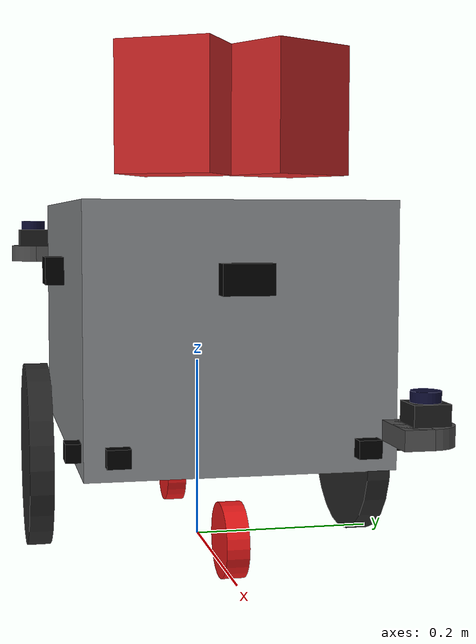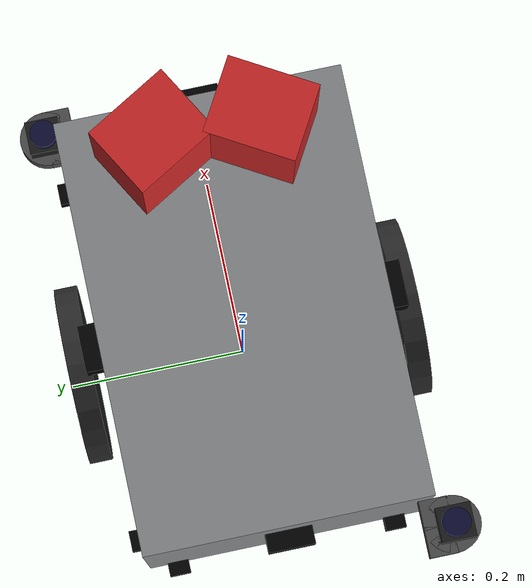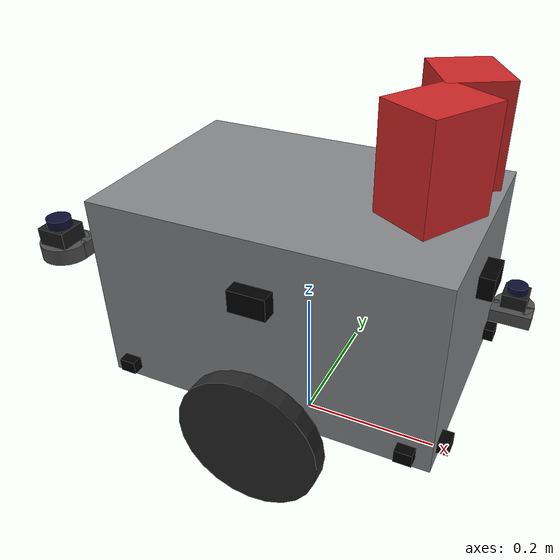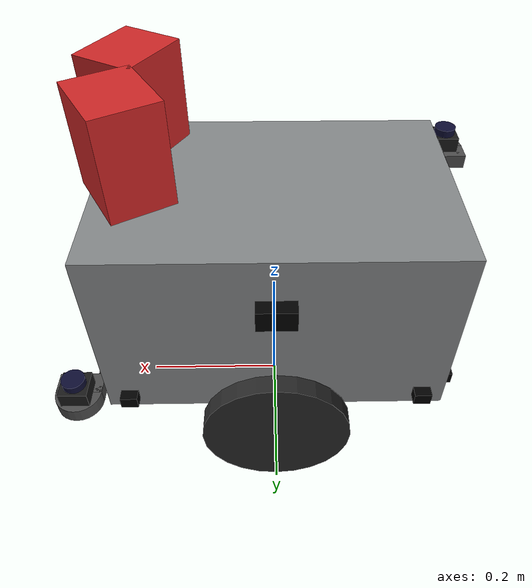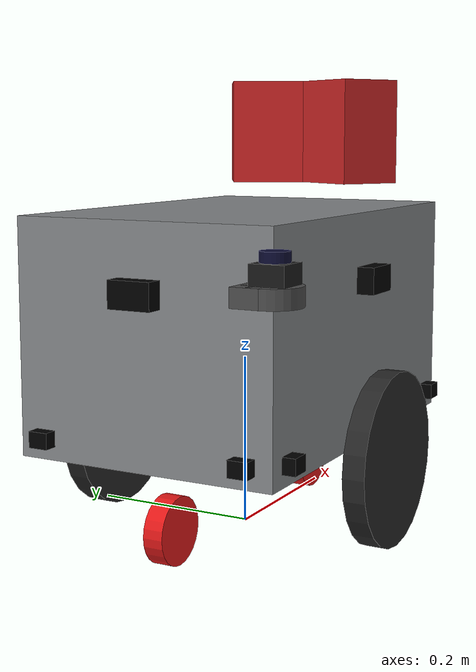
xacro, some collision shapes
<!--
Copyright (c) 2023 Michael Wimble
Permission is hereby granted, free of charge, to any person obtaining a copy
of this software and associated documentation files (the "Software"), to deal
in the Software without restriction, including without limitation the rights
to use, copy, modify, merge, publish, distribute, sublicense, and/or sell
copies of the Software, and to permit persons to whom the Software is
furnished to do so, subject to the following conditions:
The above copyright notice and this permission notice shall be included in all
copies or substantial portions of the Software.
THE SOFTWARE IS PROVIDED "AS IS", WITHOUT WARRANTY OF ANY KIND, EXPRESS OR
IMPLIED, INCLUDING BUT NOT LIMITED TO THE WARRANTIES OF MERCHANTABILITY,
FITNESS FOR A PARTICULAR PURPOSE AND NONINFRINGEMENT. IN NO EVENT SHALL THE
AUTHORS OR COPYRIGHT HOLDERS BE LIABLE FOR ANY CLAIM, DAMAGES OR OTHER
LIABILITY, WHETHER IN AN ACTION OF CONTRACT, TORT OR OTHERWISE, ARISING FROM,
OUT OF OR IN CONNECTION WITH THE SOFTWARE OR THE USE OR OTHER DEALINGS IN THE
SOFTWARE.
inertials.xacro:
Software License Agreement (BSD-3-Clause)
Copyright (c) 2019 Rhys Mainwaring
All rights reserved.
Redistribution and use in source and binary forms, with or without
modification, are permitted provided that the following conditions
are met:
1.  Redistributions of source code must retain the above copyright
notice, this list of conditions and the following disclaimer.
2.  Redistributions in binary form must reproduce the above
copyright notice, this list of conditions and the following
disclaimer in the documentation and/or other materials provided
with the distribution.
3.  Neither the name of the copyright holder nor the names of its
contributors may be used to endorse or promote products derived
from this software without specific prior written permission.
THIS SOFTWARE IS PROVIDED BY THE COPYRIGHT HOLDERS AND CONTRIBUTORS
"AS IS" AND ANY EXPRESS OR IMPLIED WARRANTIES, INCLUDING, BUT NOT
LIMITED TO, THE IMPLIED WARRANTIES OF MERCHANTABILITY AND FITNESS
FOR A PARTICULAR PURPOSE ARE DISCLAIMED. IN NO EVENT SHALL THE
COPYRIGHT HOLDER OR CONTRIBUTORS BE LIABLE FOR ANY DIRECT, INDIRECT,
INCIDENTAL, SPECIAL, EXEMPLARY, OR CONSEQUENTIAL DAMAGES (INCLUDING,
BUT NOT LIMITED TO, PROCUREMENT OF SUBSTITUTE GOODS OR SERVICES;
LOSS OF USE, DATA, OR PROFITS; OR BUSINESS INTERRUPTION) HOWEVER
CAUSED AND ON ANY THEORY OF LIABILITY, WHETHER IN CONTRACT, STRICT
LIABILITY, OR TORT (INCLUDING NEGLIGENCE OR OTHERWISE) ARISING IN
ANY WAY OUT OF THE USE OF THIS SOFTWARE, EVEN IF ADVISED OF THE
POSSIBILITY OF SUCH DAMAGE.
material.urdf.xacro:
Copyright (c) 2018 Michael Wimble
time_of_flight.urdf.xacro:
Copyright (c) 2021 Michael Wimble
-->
<?xml version="1.0"?>
<robot xmlns:xacro="http://ros.org/wiki/xacro" name="ravel">
    <xacro:include filename="$(find raven_description)/urdf/inertials.xacro" />
    <xacro:include filename="$(find raven_description)/urdf/raven_properties.urdf.xacro" />
    <xacro:include filename="$(find raven_description)/urdf/caster.urdf.xacro" />
    <xacro:include filename="$(find raven_description)/urdf/ld06.urdf.xacro" />
    <xacro:include filename="$(find raven_description)/urdf/material.urdf.xacro" />
    <xacro:include filename="$(find raven_description)/urdf/raven_gazebo.urdf.xacro" />
    <xacro:include filename="$(find raven_description)/urdf/wheel.urdf.xacro" />
    <xacro:include filename="$(find raven_description)/urdf/oakd.urdf.xacro" />

    <link name="base_link">
        <collision>
            <geometry>
                <box size="${body_length} ${body_width} ${body_height}" />
            </geometry>
            <origin rpy="0 0 0" xyz="0 0 ${(body_height/2)}" />
        </collision>
        <visual>
            <geometry>
                <box size="${body_length} ${body_width} ${body_height}" />
            </geometry>
            <material name="aluminum_frame" />
            <origin rpy="0 0 0" xyz="${(-body_length/2)+wheel_offset_from_front} 0 ${(body_height/2)}" />
        </visual>
        <inertial>
            <origin xyz="0 0 0.05" rpy="0 0 0" />
            <mass value="12" />
            <inertia ixx="${(1/12) * mass * ((body_width  * body_width)  + (body_height * body_height))}" ixy="0.0" ixz="0.0" iyy="${(1/12) * mass * ((body_length * body_length) + (body_height * body_height))}" iyz="0.0" izz="${(1/12) * mass * ((body_length * body_length) + (body_width  * body_width))}" />
        </inertial>
    </link>
    <gazebo reference="base_link">
        <material>
            aluminum_frame
        </material>
    </gazebo>

    <link name="base_footprint" />

    <joint name="base_footprint_joint" type="fixed">
        <origin xyz="0 0 ${base_to_floor_z_offset}" rpy="0 0 0" />
        <parent link="base_footprint" />
        <child link="base_link" />
    </joint>

    <xacro:wheel wheel_prefix="front_left">
        <origin xyz="0 ${(body_width/2)+wheel_center_offset} -${gear_box_center_height}" rpy="0 0 0" />
    </xacro:wheel>

    <xacro:wheel wheel_prefix="front_right">
        <origin xyz="0 -${(body_width/2)+wheel_center_offset} -${gear_box_center_height}" rpy="0 0 0" />
    </xacro:wheel>

    <xacro:caster wheel_prefix="fcaster">
        <origin xyz="${fwheel_offset} 0.0 -${wheel_radius + gear_box_center_height - caster_radius}" rpy="0 0 0" />
    </xacro:caster>
    <xacro:caster wheel_prefix="rcaster">
        <origin xyz="${-fwheel_offset} 0.0 -${wheel_radius + gear_box_center_height - caster_radius}" rpy="0 0 0" />
    </xacro:caster>

    <xacro:ld06 lidar_prefix="right_rear">
        <origin xyz="${-(body_length / 2) - 0.030}  -${((body_width / 2) - 0)} 0.200" rpy="0 0 ${M_PI}" />
    </xacro:ld06>

    <xacro:ld06 lidar_prefix="left_front">
        <origin xyz="${(body_length / 2) + 0.030}  ${((body_width / 2) - 0.0)} 0.040" rpy="0 0 0" />
    </xacro:ld06>

    <xacro:include filename="$(find raven_description)/urdf/time_of_flight.urdf.xacro" />
    <xacro:include filename="$(find raven_description)/urdf/sonar.urdf.xacro" />

    <xacro:oakd_link mount_point="right" />
    <xacro:oakd_joint mount_point="right">
        <origin xyz="0.170 -0.055 0.350" rpy="0 0 -0.523599" />
    </xacro:oakd_joint>
    <xacro:oakd_link mount_point="left" />
    <xacro:oakd_joint mount_point="left">
        <origin xyz="0.170 0.055 0.350" rpy="0 0 0.523599" />
    </xacro:oakd_joint>
</robot>

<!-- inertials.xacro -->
<!--  xacro macros for intertials.
    Define xacro macros for math constants and inertials:

    - solid cuboid
    - solid cylinder
    - null (a placeholder inertial for logical link elements)
 -->
<robot name="tenacity_inertials" xmlns:xacro="http://ros.org/wiki/xacro">

    <!-- Math constants -->
    <xacro:property name="math_pi"        value="3.141592653589793" />
    <xacro:property name="math_pi_over_2" value="1.5707963267948966" />
    <xacro:property name="math_pi_over_4" value="0.785398163397448" />

    <!-- Inertial for solid cuboid with dimensions x y z  -->
    <xacro:macro name="solid_cuboid_inertial" params="rpy xyz mass x y z">
        <inertial>
            <origin rpy="${rpy}" xyz="${xyz}"/>
            <mass value="${mass}" />
            <inertia
                ixx="${mass * (y * y + z * z) / 12.0}" ixy="0.0" ixz="0.0"
                iyy="${mass * (x * x + z * z) / 12.0}" iyz="0.0"
                izz="${mass * (x * x + y * y) / 12.0}" />
        </inertial>
    </xacro:macro>

    <!-- Inertial for solid cylinder with radius and length aligned to z-axis  -->
    <xacro:macro name="solid_cylinder_inertial" params="rpy xyz mass radius length">
        <inertial>
            <origin rpy="${rpy}" xyz="${xyz}"/>
            <mass value="${mass}" />
            <inertia
                ixx="${mass * (3.0 * radius * radius + length * length) / 12.0}" ixy="0.0" ixz="0.0"
                iyy="${mass * (3.0 * radius * radius + length * length) / 12.0}" iyz="0.0"
                izz="${mass * (radius * radius) / 2.0}" />
        </inertial>
    </xacro:macro>

    <!-- A null inertial - used in placeholder links to esure the model will work in Gazebo -->
    <xacro:macro name="null_inertial">
        <inertial>
            <mass value="0.001"/>
            <inertia ixx="0.001" ixy="0" ixz="0" iyy="0.001" iyz="0" izz="0.001"/>
        </inertial>
    </xacro:macro>
</robot>

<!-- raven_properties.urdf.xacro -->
<robot xmlns:xacro="http://ros.org/wiki/xacro">
  <xacro:property name="M_PI" value="3.14159" />

  <xacro:property name="body_height" value="0.262" />
  <xacro:property name="body_length" value="0.4572" />
  <xacro:property name="body_width" value="0.3048" />
  <xacro:property name="mass" value="22" />

  <xacro:property name="caster_radius" value="0.0381" />
  <xacro:property name="caster_width" value="0.023" />
  <xacro:property name="fwheel_offset" value="0.170" />
  <xacro:property name="gear_box_center_height" value="0.015" />
  <xacro:property name="t265_height" value="0.016" />
  <xacro:property name="t265_length" value="0.100" />
  <xacro:property name="t265_width" value="0.008" />
  <xacro:property name="t265_x_offset" value="0.2126" />
  <xacro:property name="wheel_radius" value="0.10" />
  <xacro:property name="wheel_center_offset" value="0.030" />
  <xacro:property name="wheel_width" value="0.0254" />

  <xacro:property name="base_to_floor_z_offset" value="${wheel_radius+gear_box_center_height}" />
  <xacro:property name="t265_z_offset" value="${base_to_floor_z_offset+0.293}" />

  <xacro:property name="wheel_offset_from_front" value="${body_length/2}" />

  <material name="black">
    <color rgba="0 0 0 1" />
  </material>

  <material name="blackish">
    <color rgba="0.1 0.1 0.1 1" />
  </material>

</robot>

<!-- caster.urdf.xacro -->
<robot xmlns:xacro="http://ros.org/wiki/xacro" name="caster">

	<xacro:macro name="caster" params="wheel_prefix *joint_pose">
		<link name="${wheel_prefix}_wheel_link">
			<collision>
				<origin xyz="0 0 0" rpy="${M_PI/2} 0 0" />
				<geometry>
					<cylinder length="${caster_width}" radius="${caster_radius}" />
				</geometry>
			</collision>
			<inertial>
				<mass value="0.01" />
				<origin xyz="0 0 0" />
				<inertia ixx="0.02467" ixy="0" ixz="0" iyy="0.04411" iyz="0" izz="0.02467" />
			</inertial>
			<visual>
				<geometry>
					<cylinder length="${caster_width}" radius="${caster_radius}" />
				</geometry>
				<material name="caster_wheel_material" />
				<origin xyz="0 0 0" rpy="${M_PI/2} 0 0" />
			</visual>
		</link>

		<joint name="${wheel_prefix}_wheel" type="fixed">
			<parent link="base_link" />
			<child link="${wheel_prefix}_wheel_link" />
			<xacro:insert_block name="joint_pose" />
		</joint>

		<gazebo reference="${wheel_prefix}_wheel_link">
			<mu1>0.00001</mu1>
			<mu2>0.00001</mu2>
			<material>Gazebo/Red</material>
		</gazebo>

	</xacro:macro>
</robot>

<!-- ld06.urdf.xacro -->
<robot xmlns:xacro="http://ros.org/wiki/xacro" name="ld06">

  <xacro:macro name="ld06" params="lidar_prefix *joint_pose">
    <material name="ld06_${lidar_prefix}_grey">
      <color rgba="0.3 0.3 0.3 1" />
    </material>

    <material name="ld06_${lidar_prefix}_blackish">
      <color rgba="0.1 0.1 0.1 1" />
    </material>

    <material name="ld06_${lidar_prefix}_cylinder">
      <color rgba="0.05 0.05 0.2 1" />
    </material>
    <xacro:property name="ldlidar_z_offset" value="-0.003" />

    <xacro:property name="ld06_base_box_height" value="0.020" />
    <xacro:property name="ld06_base_box_width" value="0.060" />
    <xacro:property name="ld06_box_width" value="0.037" />
    <xacro:property name="ld06_box_height" value="0.022" />
    <xacro:property name="ld06_cylinder_height" value="0.013" />
    <xacro:property name="ld06_cylinder_radius" value="0.015" />

    <link name="ld06_box_${lidar_prefix}">
      <collision>
        <geometry>
          <box size="${ld06_box_width} ${ld06_box_width} ${ld06_box_height}" />
        </geometry>
        <origin rpy="0 0 0" xyz="0 0 0" />
      </collision>
      <visual>
        <geometry>
          <box size="${ld06_box_width} ${ld06_box_width} ${ld06_box_height}" />
        </geometry>
        <origin rpy="0 0 0" xyz="0 0 0" />
        <material name="ld06_${lidar_prefix}_blackish" />
      </visual>
    </link>
    <gazebo reference="ld06_box_${lidar_prefix}">
      <material>
        Gazebo/Black
      </material>
    </gazebo>
    <link name="ld06_cylinder_${lidar_prefix}">
      <collision>
        <geometry>
          <cylinder radius="${ld06_cylinder_radius}" length="${ld06_cylinder_height}" />
        </geometry>
      </collision>
      <visual>
        <geometry>
          <cylinder radius="${ld06_cylinder_radius}" length="${ld06_cylinder_height}" />
        </geometry>
        <origin xyz="0 0 0" rpy="0 0 0" />
        <material name="ld06_${lidar_prefix}_cylinder" />
      </visual>
    </link>
    <gazebo reference="ld06_cylinder_${lidar_prefix}">
      <material>
        Gazebo/BlueGlow
      </material>
    </gazebo>
    <link name="lidar_frame_${lidar_prefix}">
      <collision>
        <geometry>
          <box size="${ld06_base_box_width} ${ld06_base_box_width / 2} ${ld06_base_box_height}" />
        </geometry>
      </collision>
      <visual>
        <geometry>
          <box size="${ld06_base_box_width} ${ld06_base_box_width / 2} ${ld06_base_box_height}" />
        </geometry>
        <origin xyz="0 0 0" rpy="0 0 0" />
        <material name="ld06_${lidar_prefix}_grey" />
      </visual>
    </link>
    <gazebo reference="ld06_frame_${lidar_prefix}">
      <material>
        Gazebo/Grey
      </material>
    </gazebo>
    <link name="ld06_base_cylinder_${lidar_prefix}">
      <collision>
        <geometry>
          <cylinder radius="${ld06_base_box_width / 2}" length="${ld06_base_box_height}" />
        </geometry>
      </collision>
      <visual>
        <geometry>
          <cylinder radius="${ld06_base_box_width / 2}" length="${ld06_base_box_height}" />
        </geometry>
        <material name="ld06_${lidar_prefix}_grey" />
        <origin xyz="0 ${ld06_base_box_width / 4} 0" rpy="0 0 0" />
      </visual>
    </link>
    <gazebo reference="ld06_base_cylinder_${lidar_prefix}">
      <material>
        Gazebo/Grey
      </material>
    </gazebo>
    <joint name="ld06_base_cylinder_base_box_${lidar_prefix}" type="fixed">
      <parent link="lidar_frame_${lidar_prefix}" />
      <child link="ld06_base_cylinder_${lidar_prefix}" />
      <origin xyz="0 0 0" rpy="0 0 0" />
      <axis xyz="0 0 0" />
    </joint>
    <joint name="ld06_box_base_box_${lidar_prefix}" type="fixed">
      <parent link="lidar_frame_${lidar_prefix}" />
      <child link="ld06_box_${lidar_prefix}" />
      <origin xyz="0 0.017 ${ld06_base_box_height}" rpy="0 0 0" />
      <axis xyz="0 0 0" />
    </joint>
    <joint name="ld06_cylinder_box_${lidar_prefix}" type="fixed">
      <parent link="ld06_box_${lidar_prefix}" />
      <child link="ld06_cylinder_${lidar_prefix}" />
      <origin xyz="0 0 ${ld06_box_height - ld06_cylinder_height/2}" rpy="0 0 0" />
      <axis xyz="0 0 0" />
    </joint>
    <joint name="base_to_lidar_frame_${lidar_prefix}" type="fixed">
      <parent link="base_link" />
      <child link="lidar_frame_${lidar_prefix}" />
      <xacro:insert_block name="joint_pose" />
    </joint>

    <gazebo reference="lidar_frame_${lidar_prefix}">
      <sensor name="sensor_ray_${lidar_prefix}" type="ray">
        <ray>
          <scan>
            <horizontal>
              <samples>450</samples>
              <resolution>0.8</resolution>
              <min_angle>0</min_angle>
              <max_angle>6.28</max_angle>
            </horizontal>
          </scan>
          <range>
            <min>0.05</min>
            <max>10.0</max>
          </range>
          <noise>
            <type>gaussian</type>
            <mean>0.0</mean>
            <stddev>0.02</stddev>
          </noise>
        </ray>
        <always_on>true</always_on>
        <update_rate>10.0</update_rate>

        <plugin name="laserscan_${lidar_prefix}" filename="libgazebo_ros_ray_sensor.so">
          <ros>
            <remapping>~/out:=/scan_${lidar_prefix}</remapping>
          </ros>
          <output_type>sensor_msgs/LaserScan</output_type>
          <frame_name>lidar_frame_${lidar_prefix}</frame_name>

        </plugin>
        <visualize>1</visualize>
      </sensor>
      <material>
        Gazebo/Black
      </material>
    </gazebo>
  </xacro:macro>
</robot>

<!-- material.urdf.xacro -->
<robot xmlns:xacro="http://ros.org/wiki/xacro" name="material">

    <material name="aluminum_frame">
        <color rgba="0.516 0.527 0.535 1" />
    </material>

    <material name="caster_wheel_material">
        <color rgba="0.9 0.1 0.1 1" />
    </material>

    <material name="t265_material">
        <color rgba="0.80 0.40 0.60 1" />
    </material>

    <material name="wheel_material">
        <color rgba="0.15 0.15 0.15 1" />
    </material>

</robot>

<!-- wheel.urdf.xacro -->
<robot xmlns:xacro="http://ros.org/wiki/xacro" name="wheel">

	<xacro:macro name="wheel" params="wheel_prefix *joint_pose">
		<link name="${wheel_prefix}_wheel_link">
			<collision>
				<origin xyz="0 0 0" rpy="${M_PI/2} 0 0" />
				<geometry>
					<cylinder length="${wheel_width}" radius="${wheel_radius}" />
				</geometry>
			</collision>
			<inertial>
				<mass value="2.637" />
				<origin xyz="0 0 0" />
				<inertia ixx="0.02467" ixy="0" ixz="0" iyy="0.04411" iyz="0" izz="0.02467" />
			</inertial>
			<visual>
				<origin xyz="0 0 0" rpy="${M_PI/2} 0 0" />
				<geometry>
					<cylinder length="${wheel_width}" radius="${wheel_radius}" />
				</geometry>
				<material name="wheel_material" />
			</visual>
		</link>

		<joint name="${wheel_prefix}_wheel_joint" type="continuous">
			<parent link="base_link" />
			<child link="${wheel_prefix}_wheel_link" />
			<xacro:insert_block name="joint_pose" />
			<axis xyz="0 1 0" rpy="0 0 0" />
			<limit effort="100" velocity="3" />
			<dynamics damping="0.1" friction="0.5" />
		</joint>

		<gazebo reference="${wheel_prefix}_wheel_link">
			<mu1 value="10000.0" />
			<mu2 value="10000.0" />
			<kp value="1e13" />
			<kd value="1" />
			<material>Gazebo/Black</material>
		</gazebo>
	</xacro:macro>

</robot>

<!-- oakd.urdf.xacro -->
<!--
  Adapted from code from:
https://github.com/jetdillo/tenacity_rover/tree/0945115d723c82f1d72bb4542ab3540b5a3fad10/tenacity_description/urdf
-->

<!--  xacro macros for oakd mount -->
<robot name="oakd" xmlns:xacro="http://ros.org/wiki/xacro">
  <xacro:macro name="oakd_link" params="mount_point">
    <xacro:property name="oakd_length" value="0.0803" />
    <xacro:property name="oakd_width" value="0.0957" />
    <xacro:property name="oakd_depth" value="0.1267" />
    <xacro:property name="oakd_mass" value="0.15" />

    <link name="oakd_${mount_point}">
      <pose>0.0 0.0 0.0 0.0 0.0 0.0</pose>
      <visual>
        <origin rpy="0 0 0" xyz="0 0 0" />
        <geometry>
          <mesh filename="file://$(find raven_description)/meshes/OAK-D.dae" />
        </geometry>
        <color rgba="0.15 0.15 0.15 1" />
      </visual>
      <collision>
        <origin rpy="0 0 0" xyz="0 0 0" />
        <geometry>
          <box size="${oakd_length} ${oakd_width} ${oakd_depth}" />
        </geometry>
      </collision>
      <xacro:solid_cuboid_inertial
        rpy="0 0 0" xyz="0 0 0"
        mass="${oakd_mass}"
        x="${oakd_length}" y="${oakd_width}" z="${oakd_depth}" />
    </link>

    <gazebo reference="oakd_${mount_point}">
      <material>Gazebo/Red</material>

      <sensor name="camera_${mount_point}" type="camera">
        <always_on>true</always_on>
        <visualize>true</visualize>
        <update_rate>10</update_rate>
        <camera name='__default__'>
          <horizontal_fov>1.089</horizontal_fov>
          <image>
            <format>R8G8B8</format>
            <width>640</width>
            <height>480</height>
          </image>
          <clip>
            <near>0.05</near>
            <far>8.0</far>
          </clip>
        </camera>
        <plugin name='camera_controller_${mount_point}' filename='libgazebo_ros_camera.so'>
          <alwaysOn>1</alwaysOn>
          <updateRate>0.0</updateRate>
          <cameraName>camera_${mount_point}</cameraName>
          <hackBaseline>0.07</hackBaseline>
          <distortionK1>0.0</distortionK1>
          <distortionK2>0.0</distortionK2>
          <distortionK3>0.0</distortionK3>
          <distortionT1>0.0</distortionT1>
          <distortionT2>0.0</distortionT2>
        </plugin>
      </sensor>
    </gazebo>

    <gazebo reference="oakd_joint_${mount_point}">
    </gazebo>
  </xacro:macro>

  <xacro:macro name="oakd_joint" params="mount_point *joint_pose">
    <joint name="oakd_joint_${mount_point}" type="fixed">
      <parent link="base_link" />
      <child link="oakd_${mount_point}" />
      <xacro:insert_block name="joint_pose" />
    </joint>

    <gazebo reference="oakd_joint_${mount_point}">
      <preserveFixedJoint>true</preserveFixedJoint>
    </gazebo>
  </xacro:macro>
</robot>

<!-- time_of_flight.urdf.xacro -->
<robot xmlns:xacro="http://ros.org/wiki/xacro" name="time_of_flight">
    <xacro:property name="back_edge" value="${-body_length +wheel_offset_from_front}" />
    <xacro:property name="front_edge" value="${wheel_offset_from_front}" />
    <xacro:property name="case_left_edge" value="${body_width/2}" />
    <xacro:property name="case_right_edge" value="-${body_width/2}" />
    <xacro:property name="tof_depth" value="0.015" />
    <xacro:property name="tof_height" value="0.018" />
    <xacro:property name="tof_width" value="0.023" />
    <xacro:property name="tof_z_offset" value="0.015" />

    <xacro:macro name="tof_unit" params="number *joint_pose">
        <link name="tof_${number}">
            <visual>
                <geometry>
                    <box size="${tof_depth} ${tof_width} ${tof_height}" />
                </geometry>
                <material name="black" />
                <origin xyz="0 0 0" rpy="0 0 0" />
            </visual>
        </link>
        <joint name="baselink_to_tof_${number}" type="fixed">
            <child link="tof_${number}" />
            <parent link="base_link" />
            <xacro:insert_block name="joint_pose" />
        </joint>
        <gazebo reference="tof_${number}">
            <material>
                Gazebo/Grey
            </material>
        </gazebo>
    </xacro:macro>

    <xacro:tof_unit number="0">
        <origin
            xyz="${front_edge+(tof_depth/2)} ${case_left_edge-(tof_width/2) - 0.020} ${(tof_height/2)+tof_z_offset}"
            rpy="0 0 0" />
    </xacro:tof_unit>

    <xacro:tof_unit number="1">
        <origin
            xyz="${front_edge+(tof_depth/2)} ${case_right_edge +(tof_width/2) + 0.020} ${(tof_height/2)+tof_z_offset}"
            rpy="0 0 0" />
    </xacro:tof_unit>

    <xacro:tof_unit number="2">
        <origin
            xyz="${front_edge-(tof_width/2 + 0.020)} ${case_left_edge+(tof_depth/2)} ${(tof_height/2)+tof_z_offset}"
            rpy="0 0 ${M_PI / 2}" />
    </xacro:tof_unit>

    <xacro:tof_unit number="3">
        <origin
            xyz="${front_edge-(tof_width/2 + 0.020)} ${case_right_edge-(tof_depth/2)} ${(tof_height/2)+tof_z_offset}"
            rpy="0 0 -${M_PI / 2}" />
    </xacro:tof_unit>

    <xacro:tof_unit number="4">
        <origin
            xyz="${back_edge+(tof_width/2) + 0.020} ${case_left_edge+(tof_depth/2)} ${(tof_height/2)+tof_z_offset}"
            rpy="0 0 ${M_PI / 2}" />
    </xacro:tof_unit>

    <xacro:tof_unit number="5">
        <origin
            xyz="${back_edge+(tof_width/2) + 0.020} ${case_right_edge-(tof_depth/2)} ${(tof_height/2)+tof_z_offset}"
            rpy="0 0 -${M_PI / 2}" />
    </xacro:tof_unit>

    <xacro:tof_unit number="6">
        <origin
            xyz="${back_edge-(tof_depth/2)} ${case_left_edge-(tof_width/2) - 0.020} ${(tof_height/2)+tof_z_offset}"
            rpy="0 0 -${M_PI}" />
    </xacro:tof_unit>

    <xacro:tof_unit number="7">
        <origin
            xyz="${back_edge-(tof_depth/2)} ${case_right_edge+(tof_width/2) + 0.020} ${(tof_height/2)+tof_z_offset}"
            rpy="0 0 -${M_PI}" />
    </xacro:tof_unit>

</robot>

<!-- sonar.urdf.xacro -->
<robot xmlns:xacro="http://ros.org/wiki/xacro" name="time_of_flight">
    <xacro:property name="back_edge" value="${-body_length +wheel_offset_from_front}" />
    <xacro:property name="front_edge" value="${wheel_offset_from_front}" />
    <xacro:property name="case_left_edge" value="${body_width/2}" />
    <xacro:property name="case_right_edge" value="-${body_width/2}" />
    <xacro:property name="sonar_depth" value="0.020" />
    <xacro:property name="sonar_height" value="0.030" />
    <xacro:property name="sonar_width" value="0.050" />
    <xacro:property name="sonar_z_offset" value="0.173" />

    <xacro:macro name="sonar_unit" params="number *joint_pose">
        <link name="sonar_${number}">
            <visual>
                <geometry>
                    <box size="${sonar_depth} ${sonar_width} ${sonar_height}" />
                </geometry>
                <material name="black" />
                <origin xyz="0 0 0" rpy="0 0 0" />
            </visual>
        </link>
        <joint name="baselink_to_sonar_${number}" type="fixed">
            <child link="sonar_${number}" />
            <parent link="base_link" />
            <xacro:insert_block name="joint_pose" />
        </joint>
        <gazebo reference="sonar_${number}">
            <material>
                Gazebo/Black
            </material>
        </gazebo>
    </xacro:macro>

    <xacro:sonar_unit number="0">
        <origin xyz="${front_edge+(sonar_depth/2)} 0 ${(sonar_height/2)+sonar_z_offset}" rpy="0 0 0" />
    </xacro:sonar_unit>

    <xacro:sonar_unit number="1">
        <origin xyz="0 ${case_left_edge+(sonar_depth/2)} ${(sonar_height/2)+sonar_z_offset}"
            rpy="0 0 ${M_PI / 2}" />
    </xacro:sonar_unit>

    <xacro:sonar_unit number="2">
        <origin xyz="0 ${case_right_edge-(sonar_depth/2)} ${(sonar_height/2)+sonar_z_offset}"
            rpy="0 0 -${M_PI / 2}" />
    </xacro:sonar_unit>

    <xacro:sonar_unit number="3">
        <origin xyz="${back_edge-(sonar_depth/2)} 0 ${(sonar_height/2)+sonar_z_offset}"
            rpy="0 0 ${M_PI}" />
    </xacro:sonar_unit>

</robot>
